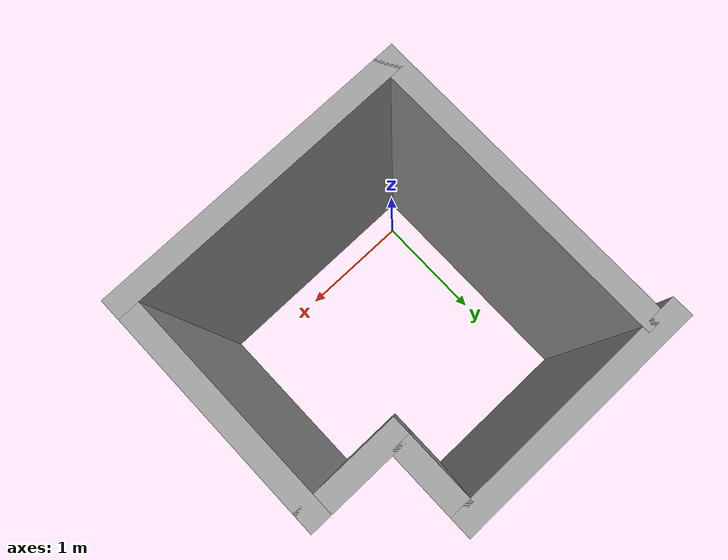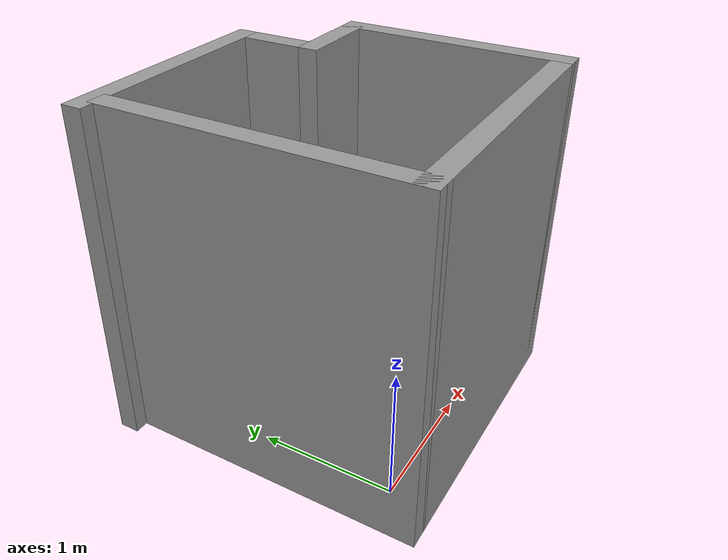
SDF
<?xml version='1.0'?>
<sdf version='1.7'>
  <model name='PUZZLEBOT_ARENA_WALLS'>
    <pose>1.35 1.45 0 0 0 0</pose>
    <link name='Wall_0'>
      <collision name='Wall_0_Collision'>
        <geometry>
          <box>
            <size>2.25 0.15 2.5</size>
          </box>
        </geometry>
        <pose>0 0 1.25 0 -0 0</pose>
      </collision>
      <visual name='Wall_0_Visual'>
        <pose>0 0 1.25 0 -0 0</pose>
        <geometry>
          <box>
            <size>2.25 0.15 2.5</size>
          </box>
        </geometry>
        <material>
          <script>
            <uri>file://media/materials/scripts/gazebo.material</uri>
            <name>Gazebo/Grey</name>
          </script>
          <ambient>1 1 1 1</ambient>
        </material>
        <meta>
          <layer>0</layer>
        </meta>
      </visual>
      <pose>-1.6025 -0.6575 0 0 -0 -1.5708</pose>
    </link>
    <link name='Wall_1'>
      <collision name='Wall_1_Collision'>
        <geometry>
          <box>
            <size>2.25 0.15 2.5</size>
          </box>
        </geometry>
        <pose>0 0 1.25 0 -0 0</pose>
      </collision>
      <visual name='Wall_1_Visual'>
        <pose>0 0 1.25 0 -0 0</pose>
        <geometry>
          <box>
            <size>2.25 0.15 2.5</size>
          </box>
        </geometry>
        <material>
          <script>
            <uri>file://media/materials/scripts/gazebo.material</uri>
            <name>Gazebo/Grey</name>
          </script>
          <ambient>1 1 1 1</ambient>
        </material>
        <meta>
          <layer>0</layer>
        </meta>
      </visual>
      <pose>-0.5525 -1.7075 0 0 -0 0</pose>
    </link>
    <link name='Wall_2'>
      <collision name='Wall_2_Collision'>
        <geometry>
          <box>
            <size>1.75 0.15 2.5</size>
          </box>
        </geometry>
        <pose>0 0 1.25 0 -0 0</pose>
      </collision>
      <visual name='Wall_2_Visual'>
        <pose>0 0 1.25 0 -0 0</pose>
        <geometry>
          <box>
            <size>1.75 0.15 2.5</size>
          </box>
        </geometry>
        <material>
          <script>
            <uri>file://media/materials/scripts/gazebo.material</uri>
            <name>Gazebo/Grey</name>
          </script>
          <ambient>1 1 1 1</ambient>
        </material>
        <meta>
          <layer>0</layer>
        </meta>
      </visual>
      <pose>0.4975 -0.9075 0 0 -0 1.5708</pose>
    </link>
    <link name='Wall_3'>
      <collision name='Wall_3_Collision'>
        <geometry>
          <box>
            <size>0.75 0.15 2.5</size>
          </box>
        </geometry>
        <pose>0 0 1.25 0 -0 0</pose>
      </collision>
      <visual name='Wall_3_Visual'>
        <pose>0 0 1.25 0 -0 0</pose>
        <geometry>
          <box>
            <size>0.75 0.15 2.5</size>
          </box>
        </geometry>
        <material>
          <script>
            <uri>file://media/materials/scripts/gazebo.material</uri>
            <name>Gazebo/Grey</name>
          </script>
          <ambient>1 1 1 1</ambient>
        </material>
        <meta>
          <layer>0</layer>
        </meta>
      </visual>
      <pose>0.1975 -0.1075 0 0 -0 3.14159</pose>
    </link>
    <link name='Wall_4'>
      <collision name='Wall_4_Collision'>
        <geometry>
          <box>
            <size>0.5 0.15 2.5</size>
          </box>
        </geometry>
        <pose>0 0 1.25 0 -0 0</pose>
      </collision>
      <visual name='Wall_4_Visual'>
        <pose>0 0 1.25 0 -0 0</pose>
        <geometry>
          <box>
            <size>0.5 0.15 2.5</size>
          </box>
        </geometry>
        <material>
          <script>
            <uri>file://media/materials/scripts/gazebo.material</uri>
            <name>Gazebo/Grey</name>
          </script>
          <ambient>1 1 1 1</ambient>
        </material>
        <meta>
          <layer>0</layer>
        </meta>
      </visual>
      <pose>-0.1025 0.1925 0 0 -0 1.5708</pose>
    </link>
    <link name='Wall_5'>
      <collision name='Wall_5_Collision'>
        <geometry>
          <box>
            <size>1.75 0.15 2.5</size>
          </box>
        </geometry>
        <pose>0 0 1.25 0 -0 0</pose>
      </collision>
      <visual name='Wall_5_Visual'>
        <pose>0 0 1.25 0 -0 0</pose>
        <geometry>
          <box>
            <size>1.75 0.15 2.5</size>
          </box>
        </geometry>
        <material>
          <script>
            <uri>file://media/materials/scripts/gazebo.material</uri>
            <name>Gazebo/Grey</name>
          </script>
          <ambient>1 1 1 1</ambient>
        </material>
        <meta>
          <layer>0</layer>
        </meta>
      </visual>
      <pose>-0.9025 0.4925 0 0 -0 3.14159</pose>
    </link>
    <static>1</static>
  </model>
</sdf>
